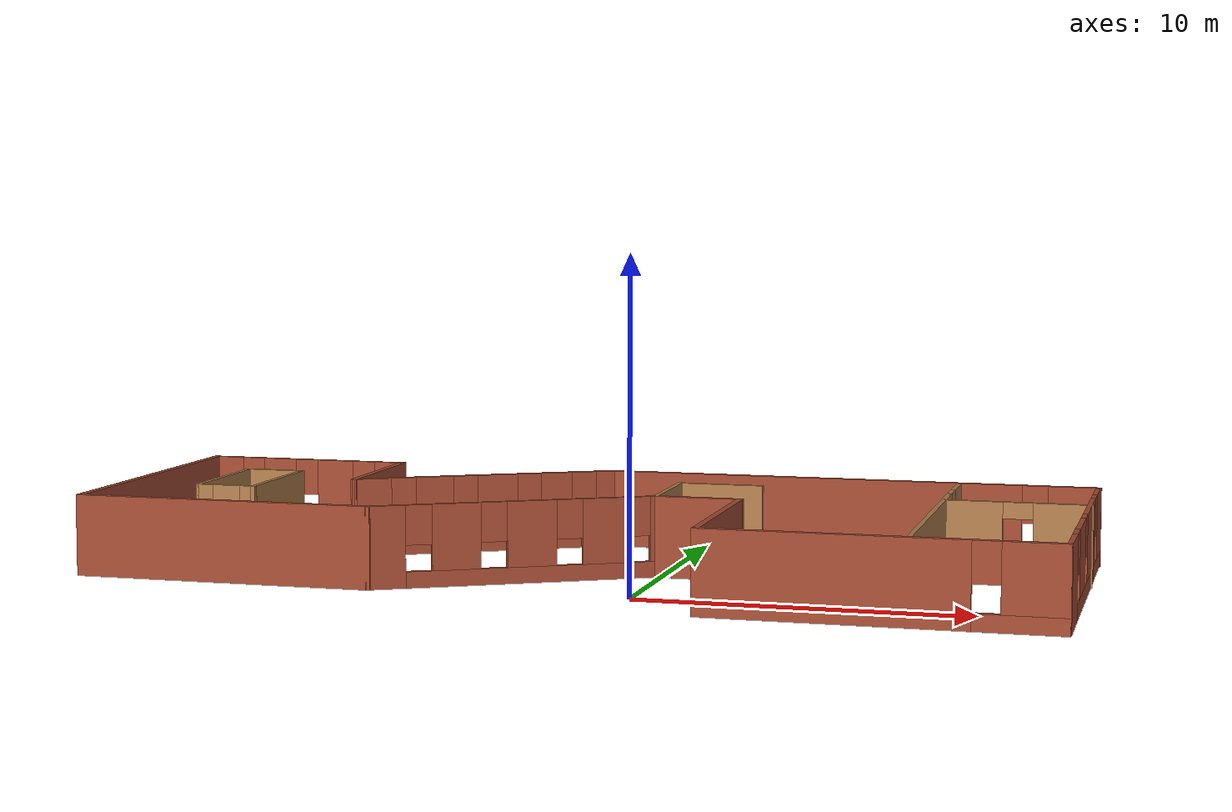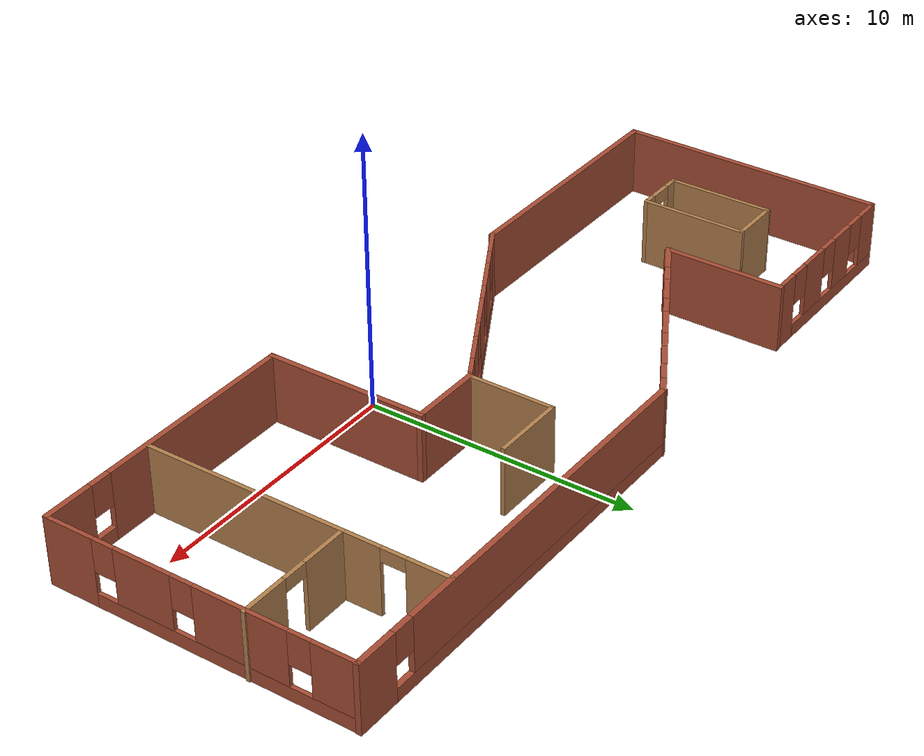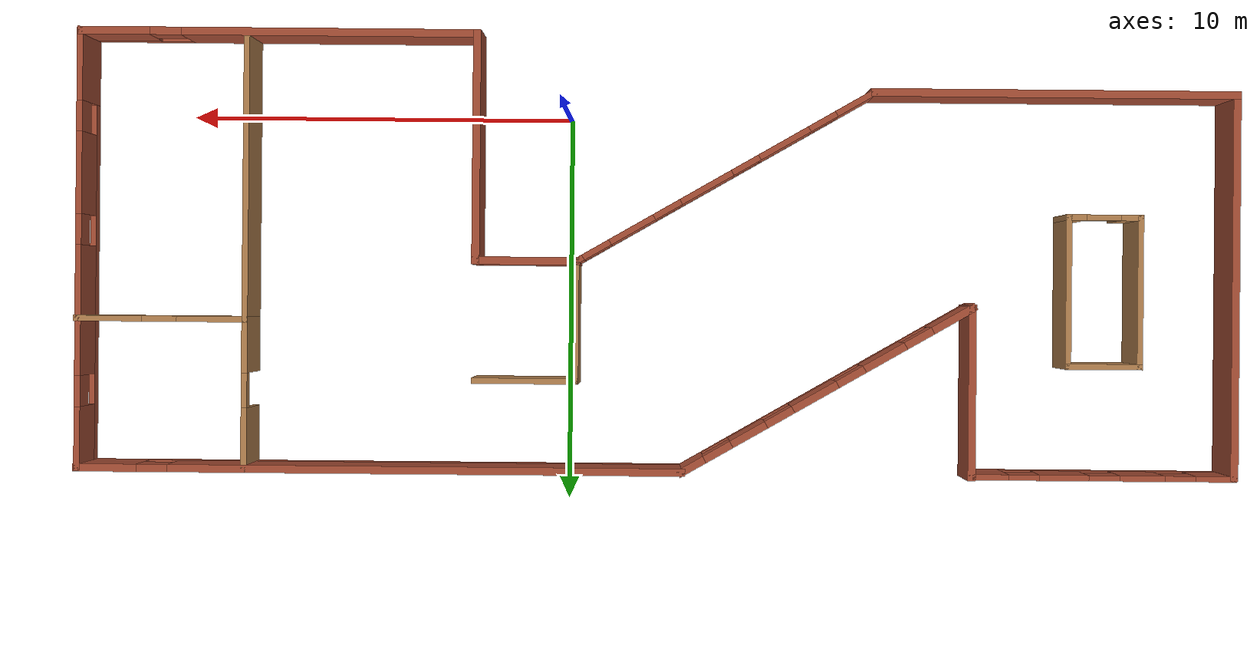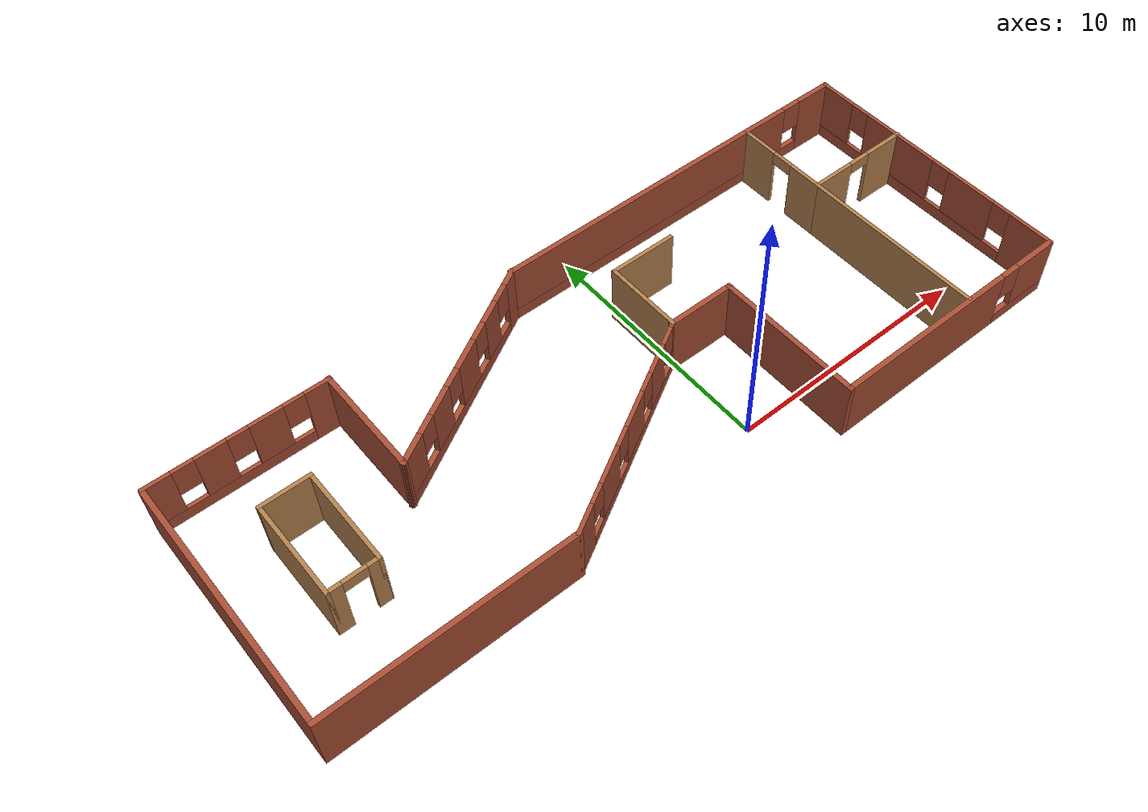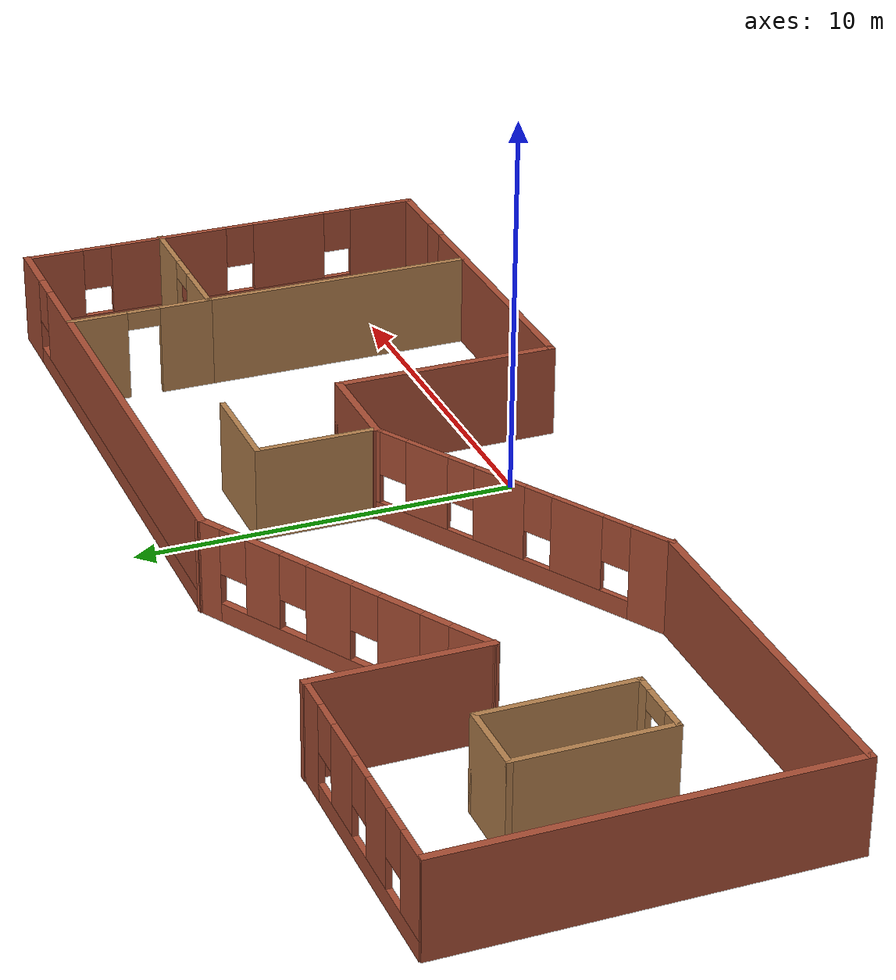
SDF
<?xml version='1.0'?>
<sdf version='1.6'>
  <model name='less_horrible'>
    <pose frame=''>-2.27039 3.5655 0 0 -0 0</pose>
    <link name='Wall_11'>
      <collision name='Wall_11_Collision'>
        <geometry>
          <box>
            <size>9.54971 0.2 2.5</size>
          </box>
        </geometry>
        <pose frame=''>0 0 1.25 0 -0 0</pose>
      </collision>
      <visual name='Wall_11_Visual'>
        <pose frame=''>0 0 1.25 0 -0 0</pose>
        <geometry>
          <box>
            <size>9.54971 0.2 2.5</size>
          </box>
        </geometry>
        <material>
          <script>
            <uri>file://media/materials/scripts/gazebo.material</uri>
            <name>Gazebo/Bricks</name>
          </script>
          <ambient>1 1 1 1</ambient>
        </material>
        <meta>
          <layer>0</layer>
        </meta>
      </visual>
      <pose frame=''>-10.2616 -4.2375 0 0 -0 0</pose>
    </link>
    <link name='Wall_12'>
      <pose frame=''>-1.75461 -2.025 0 0 -0 0.523617</pose>
      <visual name='Wall_12_Visual_0'>
        <pose frame=''>-3.89721 0 1.25 0 -0 0</pose>
        <geometry>
          <box>
            <size>1.20558 0.15 2.5</size>
          </box>
        </geometry>
        <material>
          <script>
            <uri>file://media/materials/scripts/gazebo.material</uri>
            <name>Gazebo/Bricks</name>
          </script>
          <ambient>1 1 1 1</ambient>
        </material>
        <meta>
          <layer>0</layer>
        </meta>
      </visual>
      <collision name='Wall_12_Collision_0'>
        <geometry>
          <box>
            <size>1.20558 0.15 2.5</size>
          </box>
        </geometry>
        <pose frame=''>-3.89721 0 1.25 0 -0 0</pose>
      </collision>
      <visual name='Wall_12_Visual_1'>
        <pose frame=''>0.602789 0 0.25 0 -0 0</pose>
        <geometry>
          <box>
            <size>7.79442 0.15 0.5</size>
          </box>
        </geometry>
        <material>
          <script>
            <uri>file://media/materials/scripts/gazebo.material</uri>
            <name>Gazebo/Bricks</name>
          </script>
          <ambient>1 1 1 1</ambient>
        </material>
        <meta>
          <layer>0</layer>
        </meta>
      </visual>
      <collision name='Wall_12_Collision_1'>
        <geometry>
          <box>
            <size>7.79442 0.15 0.5</size>
          </box>
        </geometry>
        <pose frame=''>0.602789 0 0.25 0 -0 0</pose>
      </collision>
      <visual name='Wall_12_Visual_2'>
        <pose frame=''>-1.75307 0 1.5 0 -0 0</pose>
        <geometry>
          <box>
            <size>1.4827 0.15 2</size>
          </box>
        </geometry>
        <material>
          <script>
            <uri>file://media/materials/scripts/gazebo.material</uri>
            <name>Gazebo/Bricks</name>
          </script>
          <ambient>1 1 1 1</ambient>
        </material>
        <meta>
          <layer>0</layer>
        </meta>
      </visual>
      <collision name='Wall_12_Collision_2'>
        <geometry>
          <box>
            <size>1.4827 0.15 2</size>
          </box>
        </geometry>
        <pose frame=''>-1.75307 0 1.5 0 -0 0</pose>
      </collision>
      <visual name='Wall_12_Visual_3'>
        <pose frame=''>0.551361 0 1.5 0 -0 0</pose>
        <geometry>
          <box>
            <size>1.52616 0.15 2</size>
          </box>
        </geometry>
        <material>
          <script>
            <uri>file://media/materials/scripts/gazebo.material</uri>
            <name>Gazebo/Bricks</name>
          </script>
          <ambient>1 1 1 1</ambient>
        </material>
        <meta>
          <layer>0</layer>
        </meta>
      </visual>
      <collision name='Wall_12_Collision_3'>
        <geometry>
          <box>
            <size>1.52616 0.15 2</size>
          </box>
        </geometry>
        <pose frame=''>0.551361 0 1.5 0 -0 0</pose>
      </collision>
      <visual name='Wall_12_Visual_4'>
        <pose frame=''>2.76852 0 1.5 0 -0 0</pose>
        <geometry>
          <box>
            <size>1.30815 0.15 2</size>
          </box>
        </geometry>
        <material>
          <script>
            <uri>file://media/materials/scripts/gazebo.material</uri>
            <name>Gazebo/Bricks</name>
          </script>
          <ambient>1 1 1 1</ambient>
        </material>
        <meta>
          <layer>0</layer>
        </meta>
      </visual>
      <collision name='Wall_12_Collision_4'>
        <geometry>
          <box>
            <size>1.30815 0.15 2</size>
          </box>
        </geometry>
        <pose frame=''>2.76852 0 1.5 0 -0 0</pose>
      </collision>
      <visual name='Wall_12_Visual_5'>
        <pose frame=''>4.3613 0 1.5 0 -0 0</pose>
        <geometry>
          <box>
            <size>0.277405 0.15 2</size>
          </box>
        </geometry>
        <material>
          <script>
            <uri>file://media/materials/scripts/gazebo.material</uri>
            <name>Gazebo/Bricks</name>
          </script>
          <ambient>1 1 1 1</ambient>
        </material>
        <meta>
          <layer>0</layer>
        </meta>
      </visual>
      <collision name='Wall_12_Collision_5'>
        <geometry>
          <box>
            <size>0.277405 0.15 2</size>
          </box>
        </geometry>
        <pose frame=''>4.3613 0 1.5 0 -0 0</pose>
      </collision>
      <visual name='Wall_12_Visual_6'>
        <pose frame=''>-2.89442 0 1.9 0 -0 0</pose>
        <geometry>
          <box>
            <size>0.8 0.15 1.2</size>
          </box>
        </geometry>
        <material>
          <script>
            <uri>file://media/materials/scripts/gazebo.material</uri>
            <name>Gazebo/Bricks</name>
          </script>
          <ambient>1 1 1 1</ambient>
        </material>
        <meta>
          <layer>0</layer>
        </meta>
      </visual>
      <collision name='Wall_12_Collision_6'>
        <geometry>
          <box>
            <size>0.8 0.15 1.2</size>
          </box>
        </geometry>
        <pose frame=''>-2.89442 0 1.9 0 -0 0</pose>
      </collision>
      <visual name='Wall_12_Visual_7'>
        <pose frame=''>-0.611721 0 1.9 0 -0 0</pose>
        <geometry>
          <box>
            <size>0.8 0.15 1.2</size>
          </box>
        </geometry>
        <material>
          <script>
            <uri>file://media/materials/scripts/gazebo.material</uri>
            <name>Gazebo/Bricks</name>
          </script>
          <ambient>1 1 1 1</ambient>
        </material>
        <meta>
          <layer>0</layer>
        </meta>
      </visual>
      <collision name='Wall_12_Collision_7'>
        <geometry>
          <box>
            <size>0.8 0.15 1.2</size>
          </box>
        </geometry>
        <pose frame=''>-0.611721 0 1.9 0 -0 0</pose>
      </collision>
      <visual name='Wall_12_Visual_8'>
        <pose frame=''>1.71444 0 1.9 0 -0 0</pose>
        <geometry>
          <box>
            <size>0.8 0.15 1.2</size>
          </box>
        </geometry>
        <material>
          <script>
            <uri>file://media/materials/scripts/gazebo.material</uri>
            <name>Gazebo/Bricks</name>
          </script>
          <ambient>1 1 1 1</ambient>
        </material>
        <meta>
          <layer>0</layer>
        </meta>
      </visual>
      <collision name='Wall_12_Collision_8'>
        <geometry>
          <box>
            <size>0.8 0.15 1.2</size>
          </box>
        </geometry>
        <pose frame=''>1.71444 0 1.9 0 -0 0</pose>
      </collision>
      <visual name='Wall_12_Visual_9'>
        <pose frame=''>3.8226 0 1.9 0 -0 0</pose>
        <geometry>
          <box>
            <size>0.8 0.15 1.2</size>
          </box>
        </geometry>
        <material>
          <script>
            <uri>file://media/materials/scripts/gazebo.material</uri>
            <name>Gazebo/Bricks</name>
          </script>
          <ambient>1 1 1 1</ambient>
        </material>
        <meta>
          <layer>0</layer>
        </meta>
      </visual>
      <collision name='Wall_12_Collision_9'>
        <geometry>
          <box>
            <size>0.8 0.15 1.2</size>
          </box>
        </geometry>
        <pose frame=''>3.8226 0 1.9 0 -0 0</pose>
      </collision>
    </link>
    <link name='Wall_13'>
      <collision name='Wall_13_Collision'>
        <geometry>
          <box>
            <size>2.80004 0.2 2.5</size>
          </box>
        </geometry>
        <pose frame=''>0 0 1.25 0 -0 0</pose>
      </collision>
      <visual name='Wall_13_Visual'>
        <pose frame=''>0 0 1.25 0 -0 0</pose>
        <geometry>
          <box>
            <size>2.80004 0.2 2.5</size>
          </box>
        </geometry>
        <material>
          <script>
            <uri>file://media/materials/scripts/gazebo.material</uri>
            <name>Gazebo/Bricks</name>
          </script>
          <ambient>1 1 1 1</ambient>
        </material>
        <meta>
          <layer>0</layer>
        </meta>
      </visual>
      <pose frame=''>3.37739 0.1875 0 0 -0 0</pose>
    </link>
    <link name='Wall_14'>
      <collision name='Wall_14_Collision'>
        <geometry>
          <box>
            <size>6.05 0.2 2.5</size>
          </box>
        </geometry>
        <pose frame=''>0 0 1.25 0 -0 0</pose>
      </collision>
      <visual name='Wall_14_Visual'>
        <pose frame=''>0 0 1.25 0 -0 0</pose>
        <geometry>
          <box>
            <size>6.05 0.2 2.5</size>
          </box>
        </geometry>
        <material>
          <script>
            <uri>file://media/materials/scripts/gazebo.material</uri>
            <name>Gazebo/Bricks</name>
          </script>
          <ambient>1 1 1 1</ambient>
        </material>
        <meta>
          <layer>0</layer>
        </meta>
      </visual>
      <pose frame=''>4.67739 -2.7375 0 0 0 -1.5708</pose>
    </link>
    <link name='Wall_18'>
      <pose frame=''>9.77389 -5.6625 0 0 -0 0</pose>
      <visual name='Wall_18_Visual_0'>
        <pose frame=''>-1.32868 0 1.25 0 -0 0</pose>
        <geometry>
          <box>
            <size>7.73564 0.2 2.5</size>
          </box>
        </geometry>
        <material>
          <script>
            <uri>file://media/materials/scripts/gazebo.material</uri>
            <name>Gazebo/Bricks</name>
          </script>
          <ambient>1 1 1 1</ambient>
        </material>
        <meta>
          <layer>0</layer>
        </meta>
      </visual>
      <collision name='Wall_18_Collision_0'>
        <geometry>
          <box>
            <size>7.73564 0.2 2.5</size>
          </box>
        </geometry>
        <pose frame=''>-1.32868 0 1.25 0 -0 0</pose>
      </collision>
      <visual name='Wall_18_Visual_1'>
        <pose frame=''>3.86782 0 0.25 0 -0 0</pose>
        <geometry>
          <box>
            <size>2.65736 0.2 0.5</size>
          </box>
        </geometry>
        <material>
          <script>
            <uri>file://media/materials/scripts/gazebo.material</uri>
            <name>Gazebo/Bricks</name>
          </script>
          <ambient>1 1 1 1</ambient>
        </material>
        <meta>
          <layer>0</layer>
        </meta>
      </visual>
      <collision name='Wall_18_Collision_1'>
        <geometry>
          <box>
            <size>2.65736 0.2 0.5</size>
          </box>
        </geometry>
        <pose frame=''>3.86782 0 0.25 0 -0 0</pose>
      </collision>
      <visual name='Wall_18_Visual_2'>
        <pose frame=''>4.26782 0 1.5 0 -0 0</pose>
        <geometry>
          <box>
            <size>1.85736 0.2 2</size>
          </box>
        </geometry>
        <material>
          <script>
            <uri>file://media/materials/scripts/gazebo.material</uri>
            <name>Gazebo/Bricks</name>
          </script>
          <ambient>1 1 1 1</ambient>
        </material>
        <meta>
          <layer>0</layer>
        </meta>
      </visual>
      <collision name='Wall_18_Collision_2'>
        <geometry>
          <box>
            <size>1.85736 0.2 2</size>
          </box>
        </geometry>
        <pose frame=''>4.26782 0 1.5 0 -0 0</pose>
      </collision>
      <visual name='Wall_18_Visual_3'>
        <pose frame=''>2.93914 0 1.9 0 -0 0</pose>
        <geometry>
          <box>
            <size>0.8 0.2 1.2</size>
          </box>
        </geometry>
        <material>
          <script>
            <uri>file://media/materials/scripts/gazebo.material</uri>
            <name>Gazebo/Bricks</name>
          </script>
          <ambient>1 1 1 1</ambient>
        </material>
        <meta>
          <layer>0</layer>
        </meta>
      </visual>
      <collision name='Wall_18_Collision_3'>
        <geometry>
          <box>
            <size>0.8 0.2 1.2</size>
          </box>
        </geometry>
        <pose frame=''>2.93914 0 1.9 0 -0 0</pose>
      </collision>
    </link>
    <link name='Wall_21'>
      <pose frame=''>10.6116 3.68688 0 0 0 -1.5708</pose>
      <visual name='Wall_21_Visual_0'>
        <pose frame=''>-1.17669 0 1.25 0 -0 0</pose>
        <geometry>
          <box>
            <size>1.64661 0.15 2.5</size>
          </box>
        </geometry>
        <material>
          <script>
            <uri>file://media/materials/scripts/gazebo.material</uri>
            <name>Gazebo/Wood</name>
          </script>
          <ambient>1 1 1 1</ambient>
        </material>
        <meta>
          <layer>0</layer>
        </meta>
      </visual>
      <collision name='Wall_21_Collision_0'>
        <geometry>
          <box>
            <size>1.64661 0.15 2.5</size>
          </box>
        </geometry>
        <pose frame=''>-1.17669 0 1.25 0 -0 0</pose>
      </collision>
      <visual name='Wall_21_Visual_1'>
        <pose frame=''>1.27331 0 1.25 0 -0 0</pose>
        <geometry>
          <box>
            <size>1.45338 0.15 2.5</size>
          </box>
        </geometry>
        <material>
          <script>
            <uri>file://media/materials/scripts/gazebo.material</uri>
            <name>Gazebo/Wood</name>
          </script>
          <ambient>1 1 1 1</ambient>
        </material>
        <meta>
          <layer>0</layer>
        </meta>
      </visual>
      <collision name='Wall_21_Collision_1'>
        <geometry>
          <box>
            <size>1.45338 0.15 2.5</size>
          </box>
        </geometry>
        <pose frame=''>1.27331 0 1.25 0 -0 0</pose>
      </collision>
      <visual name='Wall_21_Visual_2'>
        <pose frame=''>0.096615 0 2.25 0 -0 0</pose>
        <geometry>
          <box>
            <size>0.9 0.15 0.5</size>
          </box>
        </geometry>
        <material>
          <script>
            <uri>file://media/materials/scripts/gazebo.material</uri>
            <name>Gazebo/Wood</name>
          </script>
          <ambient>1 1 1 1</ambient>
        </material>
        <meta>
          <layer>0</layer>
        </meta>
      </visual>
      <collision name='Wall_21_Collision_2'>
        <geometry>
          <box>
            <size>0.9 0.15 0.5</size>
          </box>
        </geometry>
        <pose frame=''>0.096615 0 2.25 0 -0 0</pose>
      </collision>
    </link>
    <link name='Wall_22'>
      <pose frame=''>12.7866 1.76188 0 0 -0 0</pose>
      <visual name='Wall_22_Visual_0'>
        <pose frame=''>-1.33359 0 1.25 0 -0 0</pose>
        <geometry>
          <box>
            <size>1.83282 0.15 2.5</size>
          </box>
        </geometry>
        <material>
          <script>
            <uri>file://media/materials/scripts/gazebo.material</uri>
            <name>Gazebo/Wood</name>
          </script>
          <ambient>1 1 1 1</ambient>
        </material>
        <meta>
          <layer>0</layer>
        </meta>
      </visual>
      <collision name='Wall_22_Collision_0'>
        <geometry>
          <box>
            <size>1.83282 0.15 2.5</size>
          </box>
        </geometry>
        <pose frame=''>-1.33359 0 1.25 0 -0 0</pose>
      </collision>
      <visual name='Wall_22_Visual_1'>
        <pose frame=''>1.36641 0 1.25 0 -0 0</pose>
        <geometry>
          <box>
            <size>1.76718 0.15 2.5</size>
          </box>
        </geometry>
        <material>
          <script>
            <uri>file://media/materials/scripts/gazebo.material</uri>
            <name>Gazebo/Wood</name>
          </script>
          <ambient>1 1 1 1</ambient>
        </material>
        <meta>
          <layer>0</layer>
        </meta>
      </visual>
      <collision name='Wall_22_Collision_1'>
        <geometry>
          <box>
            <size>1.76718 0.15 2.5</size>
          </box>
        </geometry>
        <pose frame=''>1.36641 0 1.25 0 -0 0</pose>
      </collision>
      <visual name='Wall_22_Visual_2'>
        <pose frame=''>0.032816 0 2.25 0 -0 0</pose>
        <geometry>
          <box>
            <size>0.9 0.15 0.5</size>
          </box>
        </geometry>
        <material>
          <script>
            <uri>file://media/materials/scripts/gazebo.material</uri>
            <name>Gazebo/Wood</name>
          </script>
          <ambient>1 1 1 1</ambient>
        </material>
        <meta>
          <layer>0</layer>
        </meta>
      </visual>
      <collision name='Wall_22_Collision_2'>
        <geometry>
          <box>
            <size>0.9 0.15 0.5</size>
          </box>
        </geometry>
        <pose frame=''>0.032816 0 2.25 0 -0 0</pose>
      </collision>
    </link>
    <link name='Wall_24'>
      <collision name='Wall_24_Collision'>
        <geometry>
          <box>
            <size>7.5 0.15 2.5</size>
          </box>
        </geometry>
        <pose frame=''>0 0 1.25 0 -0 0</pose>
      </collision>
      <visual name='Wall_24_Visual'>
        <pose frame=''>0 0 1.25 0 -0 0</pose>
        <geometry>
          <box>
            <size>7.5 0.15 2.5</size>
          </box>
        </geometry>
        <material>
          <script>
            <uri>file://media/materials/scripts/gazebo.material</uri>
            <name>Gazebo/Wood</name>
          </script>
          <ambient>1 1 1 1</ambient>
        </material>
        <meta>
          <layer>0</layer>
        </meta>
      </visual>
      <pose frame=''>10.6116 -1.91312 0 0 0 -1.5708</pose>
    </link>
    <link name='Wall_3'>
      <collision name='Wall_3_Collision'>
        <geometry>
          <box>
            <size>10.0498 0.2 2.5</size>
          </box>
        </geometry>
        <pose frame=''>0 0 1.25 0 -0 0</pose>
      </collision>
      <visual name='Wall_3_Visual'>
        <pose frame=''>0 0 1.25 0 -0 0</pose>
        <geometry>
          <box>
            <size>10.0498 0.2 2.5</size>
          </box>
        </geometry>
        <material>
          <script>
            <uri>file://media/materials/scripts/gazebo.material</uri>
            <name>Gazebo/Bricks</name>
          </script>
          <ambient>1 1 1 1</ambient>
        </material>
        <meta>
          <layer>0</layer>
        </meta>
      </visual>
      <pose frame=''>-14.9366 0.6875 0 0 0 -1.5708</pose>
    </link>
    <link name='Wall_5'>
      <pose frame=''>14.9134 -0.0265 0 0 -0 1.5708</pose>
      <visual name='Wall_5_Visual_0'>
        <pose frame=''>-4.77314 0 1.25 0 -0 0</pose>
        <geometry>
          <box>
            <size>1.88171 0.15 2.5</size>
          </box>
        </geometry>
        <material>
          <script>
            <uri>file://media/materials/scripts/gazebo.material</uri>
            <name>Gazebo/Bricks</name>
          </script>
          <ambient>1 1 1 1</ambient>
        </material>
        <meta>
          <layer>0</layer>
        </meta>
      </visual>
      <collision name='Wall_5_Collision_0'>
        <geometry>
          <box>
            <size>1.88171 0.15 2.5</size>
          </box>
        </geometry>
        <pose frame=''>-4.77314 0 1.25 0 -0 0</pose>
      </collision>
      <visual name='Wall_5_Visual_1'>
        <pose frame=''>0.940857 0 0.25 0 -0 0</pose>
        <geometry>
          <box>
            <size>9.54629 0.15 0.5</size>
          </box>
        </geometry>
        <material>
          <script>
            <uri>file://media/materials/scripts/gazebo.material</uri>
            <name>Gazebo/Bricks</name>
          </script>
          <ambient>1 1 1 1</ambient>
        </material>
        <meta>
          <layer>0</layer>
        </meta>
      </visual>
      <collision name='Wall_5_Collision_1'>
        <geometry>
          <box>
            <size>9.54629 0.15 0.5</size>
          </box>
        </geometry>
        <pose frame=''>0.940857 0 0.25 0 -0 0</pose>
      </collision>
      <visual name='Wall_5_Visual_2'>
        <pose frame=''>-1.96928 0 1.5 0 -0 0</pose>
        <geometry>
          <box>
            <size>2.12602 0.15 2</size>
          </box>
        </geometry>
        <material>
          <script>
            <uri>file://media/materials/scripts/gazebo.material</uri>
            <name>Gazebo/Bricks</name>
          </script>
          <ambient>1 1 1 1</ambient>
        </material>
        <meta>
          <layer>0</layer>
        </meta>
      </visual>
      <collision name='Wall_5_Collision_2'>
        <geometry>
          <box>
            <size>2.12602 0.15 2</size>
          </box>
        </geometry>
        <pose frame=''>-1.96928 0 1.5 0 -0 0</pose>
      </collision>
      <visual name='Wall_5_Visual_3'>
        <pose frame=''>1.58185 0 1.5 0 -0 0</pose>
        <geometry>
          <box>
            <size>3.37623 0.15 2</size>
          </box>
        </geometry>
        <material>
          <script>
            <uri>file://media/materials/scripts/gazebo.material</uri>
            <name>Gazebo/Bricks</name>
          </script>
          <ambient>1 1 1 1</ambient>
        </material>
        <meta>
          <layer>0</layer>
        </meta>
      </visual>
      <collision name='Wall_5_Collision_3'>
        <geometry>
          <box>
            <size>3.37623 0.15 2</size>
          </box>
        </geometry>
        <pose frame=''>1.58185 0 1.5 0 -0 0</pose>
      </collision>
      <visual name='Wall_5_Visual_4'>
        <pose frame=''>4.89198 0 1.5 0 -0 0</pose>
        <geometry>
          <box>
            <size>1.64403 0.15 2</size>
          </box>
        </geometry>
        <material>
          <script>
            <uri>file://media/materials/scripts/gazebo.material</uri>
            <name>Gazebo/Bricks</name>
          </script>
          <ambient>1 1 1 1</ambient>
        </material>
        <meta>
          <layer>0</layer>
        </meta>
      </visual>
      <collision name='Wall_5_Collision_4'>
        <geometry>
          <box>
            <size>1.64403 0.15 2</size>
          </box>
        </geometry>
        <pose frame=''>4.89198 0 1.5 0 -0 0</pose>
      </collision>
      <visual name='Wall_5_Visual_5'>
        <pose frame=''>-3.43229 0 1.9 0 -0 0</pose>
        <geometry>
          <box>
            <size>0.8 0.15 1.2</size>
          </box>
        </geometry>
        <material>
          <script>
            <uri>file://media/materials/scripts/gazebo.material</uri>
            <name>Gazebo/Bricks</name>
          </script>
          <ambient>1 1 1 1</ambient>
        </material>
        <meta>
          <layer>0</layer>
        </meta>
      </visual>
      <collision name='Wall_5_Collision_5'>
        <geometry>
          <box>
            <size>0.8 0.15 1.2</size>
          </box>
        </geometry>
        <pose frame=''>-3.43229 0 1.9 0 -0 0</pose>
      </collision>
      <visual name='Wall_5_Visual_6'>
        <pose frame=''>-0.506265 0 1.9 0 -0 0</pose>
        <geometry>
          <box>
            <size>0.8 0.15 1.2</size>
          </box>
        </geometry>
        <material>
          <script>
            <uri>file://media/materials/scripts/gazebo.material</uri>
            <name>Gazebo/Bricks</name>
          </script>
          <ambient>1 1 1 1</ambient>
        </material>
        <meta>
          <layer>0</layer>
        </meta>
      </visual>
      <collision name='Wall_5_Collision_6'>
        <geometry>
          <box>
            <size>0.8 0.15 1.2</size>
          </box>
        </geometry>
        <pose frame=''>-0.506265 0 1.9 0 -0 0</pose>
      </collision>
      <visual name='Wall_5_Visual_7'>
        <pose frame=''>3.66997 0 1.9 0 -0 0</pose>
        <geometry>
          <box>
            <size>0.8 0.15 1.2</size>
          </box>
        </geometry>
        <material>
          <script>
            <uri>file://media/materials/scripts/gazebo.material</uri>
            <name>Gazebo/Bricks</name>
          </script>
          <ambient>1 1 1 1</ambient>
        </material>
        <meta>
          <layer>0</layer>
        </meta>
      </visual>
      <collision name='Wall_5_Collision_7'>
        <geometry>
          <box>
            <size>0.8 0.15 1.2</size>
          </box>
        </geometry>
        <pose frame=''>3.66997 0 1.9 0 -0 0</pose>
      </collision>
    </link>
    <link name='Wall_6'>
      <pose frame=''>7.11339 5.6125 0 0 -0 3.14159</pose>
      <visual name='Wall_6_Visual_0'>
        <pose frame=''>-7.08284 0 1.25 0 -0 0</pose>
        <geometry>
          <box>
            <size>1.63432 0.2 2.5</size>
          </box>
        </geometry>
        <material>
          <script>
            <uri>file://media/materials/scripts/gazebo.material</uri>
            <name>Gazebo/Bricks</name>
          </script>
          <ambient>1 1 1 1</ambient>
        </material>
        <meta>
          <layer>0</layer>
        </meta>
      </visual>
      <collision name='Wall_6_Collision_0'>
        <geometry>
          <box>
            <size>1.63432 0.2 2.5</size>
          </box>
        </geometry>
        <pose frame=''>-7.08284 0 1.25 0 -0 0</pose>
      </collision>
      <visual name='Wall_6_Visual_1'>
        <pose frame=''>0.817161 0 0.25 0 -0 0</pose>
        <geometry>
          <box>
            <size>14.1657 0.2 0.5</size>
          </box>
        </geometry>
        <material>
          <script>
            <uri>file://media/materials/scripts/gazebo.material</uri>
            <name>Gazebo/Bricks</name>
          </script>
          <ambient>1 1 1 1</ambient>
        </material>
        <meta>
          <layer>0</layer>
        </meta>
      </visual>
      <collision name='Wall_6_Collision_1'>
        <geometry>
          <box>
            <size>14.1657 0.2 0.5</size>
          </box>
        </geometry>
        <pose frame=''>0.817161 0 0.25 0 -0 0</pose>
      </collision>
      <visual name='Wall_6_Visual_2'>
        <pose frame=''>1.21716 0 1.5 0 -0 0</pose>
        <geometry>
          <box>
            <size>13.3657 0.2 2</size>
          </box>
        </geometry>
        <material>
          <script>
            <uri>file://media/materials/scripts/gazebo.material</uri>
            <name>Gazebo/Bricks</name>
          </script>
          <ambient>1 1 1 1</ambient>
        </material>
        <meta>
          <layer>0</layer>
        </meta>
      </visual>
      <collision name='Wall_6_Collision_2'>
        <geometry>
          <box>
            <size>13.3657 0.2 2</size>
          </box>
        </geometry>
        <pose frame=''>1.21716 0 1.5 0 -0 0</pose>
      </collision>
      <visual name='Wall_6_Visual_3'>
        <pose frame=''>-5.86568 0 1.9 0 -0 0</pose>
        <geometry>
          <box>
            <size>0.8 0.2 1.2</size>
          </box>
        </geometry>
        <material>
          <script>
            <uri>file://media/materials/scripts/gazebo.material</uri>
            <name>Gazebo/Bricks</name>
          </script>
          <ambient>1 1 1 1</ambient>
        </material>
        <meta>
          <layer>0</layer>
        </meta>
      </visual>
      <collision name='Wall_6_Collision_3'>
        <geometry>
          <box>
            <size>0.8 0.2 1.2</size>
          </box>
        </geometry>
        <pose frame=''>-5.86568 0 1.9 0 -0 0</pose>
      </collision>
    </link>
    <link name='Wall_69'>
      <collision name='Wall_69_Collision'>
        <geometry>
          <box>
            <size>3.25 0.15 2.5</size>
          </box>
        </geometry>
        <pose frame=''>0 0 1.25 0 -0 0</pose>
      </collision>
      <visual name='Wall_69_Visual'>
        <pose frame=''>0 0 1.25 0 -0 0</pose>
        <geometry>
          <box>
            <size>3.25 0.15 2.5</size>
          </box>
        </geometry>
        <material>
          <script>
            <uri>file://media/materials/scripts/gazebo.material</uri>
            <name>Gazebo/Wood</name>
          </script>
          <ambient>1 1 1 1</ambient>
        </material>
        <meta>
          <layer>0</layer>
        </meta>
      </visual>
      <pose frame=''>2.07741 1.73758 0 0 -0 1.57079</pose>
    </link>
    <link name='Wall_7'>
      <pose frame=''>-4.42411 3.4625 0 0 0 -2.61957</pose>
      <visual name='Wall_7_Visual_0'>
        <pose frame=''>-4.02424 0 1.25 0 -0 0</pose>
        <geometry>
          <box>
            <size>0.775071 0.2 2.5</size>
          </box>
        </geometry>
        <material>
          <script>
            <uri>file://media/materials/scripts/gazebo.material</uri>
            <name>Gazebo/Bricks</name>
          </script>
          <ambient>1 1 1 1</ambient>
        </material>
        <meta>
          <layer>0</layer>
        </meta>
      </visual>
      <collision name='Wall_7_Collision_0'>
        <geometry>
          <box>
            <size>0.775071 0.2 2.5</size>
          </box>
        </geometry>
        <pose frame=''>-4.02424 0 1.25 0 -0 0</pose>
      </collision>
      <visual name='Wall_7_Visual_1'>
        <pose frame=''>0.387535 0 0.25 0 -0 0</pose>
        <geometry>
          <box>
            <size>8.04848 0.2 0.5</size>
          </box>
        </geometry>
        <material>
          <script>
            <uri>file://media/materials/scripts/gazebo.material</uri>
            <name>Gazebo/Bricks</name>
          </script>
          <ambient>1 1 1 1</ambient>
        </material>
        <meta>
          <layer>0</layer>
        </meta>
      </visual>
      <collision name='Wall_7_Collision_1'>
        <geometry>
          <box>
            <size>8.04848 0.2 0.5</size>
          </box>
        </geometry>
        <pose frame=''>0.387535 0 0.25 0 -0 0</pose>
      </collision>
      <visual name='Wall_7_Visual_2'>
        <pose frame=''>-2.32092 0 1.5 0 -0 0</pose>
        <geometry>
          <box>
            <size>1.03156 0.2 2</size>
          </box>
        </geometry>
        <material>
          <script>
            <uri>file://media/materials/scripts/gazebo.material</uri>
            <name>Gazebo/Bricks</name>
          </script>
          <ambient>1 1 1 1</ambient>
        </material>
        <meta>
          <layer>0</layer>
        </meta>
      </visual>
      <collision name='Wall_7_Collision_2'>
        <geometry>
          <box>
            <size>1.03156 0.2 2</size>
          </box>
        </geometry>
        <pose frame=''>-2.32092 0 1.5 0 -0 0</pose>
      </collision>
      <visual name='Wall_7_Visual_3'>
        <pose frame=''>-0.346126 0 1.5 0 -0 0</pose>
        <geometry>
          <box>
            <size>1.31804 0.2 2</size>
          </box>
        </geometry>
        <material>
          <script>
            <uri>file://media/materials/scripts/gazebo.material</uri>
            <name>Gazebo/Bricks</name>
          </script>
          <ambient>1 1 1 1</ambient>
        </material>
        <meta>
          <layer>0</layer>
        </meta>
      </visual>
      <collision name='Wall_7_Collision_3'>
        <geometry>
          <box>
            <size>1.31804 0.2 2</size>
          </box>
        </geometry>
        <pose frame=''>-0.346126 0 1.5 0 -0 0</pose>
      </collision>
      <visual name='Wall_7_Visual_4'>
        <pose frame=''>1.72376 0 1.5 0 -0 0</pose>
        <geometry>
          <box>
            <size>1.22172 0.2 2</size>
          </box>
        </geometry>
        <material>
          <script>
            <uri>file://media/materials/scripts/gazebo.material</uri>
            <name>Gazebo/Bricks</name>
          </script>
          <ambient>1 1 1 1</ambient>
        </material>
        <meta>
          <layer>0</layer>
        </meta>
      </visual>
      <collision name='Wall_7_Collision_4'>
        <geometry>
          <box>
            <size>1.22172 0.2 2</size>
          </box>
        </geometry>
        <pose frame=''>1.72376 0 1.5 0 -0 0</pose>
      </collision>
      <visual name='Wall_7_Visual_5'>
        <pose frame=''>3.7732 0 1.5 0 -0 0</pose>
        <geometry>
          <box>
            <size>1.27716 0.2 2</size>
          </box>
        </geometry>
        <material>
          <script>
            <uri>file://media/materials/scripts/gazebo.material</uri>
            <name>Gazebo/Bricks</name>
          </script>
          <ambient>1 1 1 1</ambient>
        </material>
        <meta>
          <layer>0</layer>
        </meta>
      </visual>
      <collision name='Wall_7_Collision_5'>
        <geometry>
          <box>
            <size>1.27716 0.2 2</size>
          </box>
        </geometry>
        <pose frame=''>3.7732 0 1.5 0 -0 0</pose>
      </collision>
      <visual name='Wall_7_Visual_6'>
        <pose frame=''>-3.2367 0 1.9 0 -0 0</pose>
        <geometry>
          <box>
            <size>0.8 0.2 1.2</size>
          </box>
        </geometry>
        <material>
          <script>
            <uri>file://media/materials/scripts/gazebo.material</uri>
            <name>Gazebo/Bricks</name>
          </script>
          <ambient>1 1 1 1</ambient>
        </material>
        <meta>
          <layer>0</layer>
        </meta>
      </visual>
      <collision name='Wall_7_Collision_6'>
        <geometry>
          <box>
            <size>0.8 0.2 1.2</size>
          </box>
        </geometry>
        <pose frame=''>-3.2367 0 1.9 0 -0 0</pose>
      </collision>
      <visual name='Wall_7_Visual_7'>
        <pose frame=''>-1.40515 0 1.9 0 -0 0</pose>
        <geometry>
          <box>
            <size>0.8 0.2 1.2</size>
          </box>
        </geometry>
        <material>
          <script>
            <uri>file://media/materials/scripts/gazebo.material</uri>
            <name>Gazebo/Bricks</name>
          </script>
          <ambient>1 1 1 1</ambient>
        </material>
        <meta>
          <layer>0</layer>
        </meta>
      </visual>
      <collision name='Wall_7_Collision_7'>
        <geometry>
          <box>
            <size>0.8 0.2 1.2</size>
          </box>
        </geometry>
        <pose frame=''>-1.40515 0 1.9 0 -0 0</pose>
      </collision>
      <visual name='Wall_7_Visual_8'>
        <pose frame=''>0.712894 0 1.9 0 -0 0</pose>
        <geometry>
          <box>
            <size>0.8 0.2 1.2</size>
          </box>
        </geometry>
        <material>
          <script>
            <uri>file://media/materials/scripts/gazebo.material</uri>
            <name>Gazebo/Bricks</name>
          </script>
          <ambient>1 1 1 1</ambient>
        </material>
        <meta>
          <layer>0</layer>
        </meta>
      </visual>
      <collision name='Wall_7_Collision_8'>
        <geometry>
          <box>
            <size>0.8 0.2 1.2</size>
          </box>
        </geometry>
        <pose frame=''>0.712894 0 1.9 0 -0 0</pose>
      </collision>
      <visual name='Wall_7_Visual_9'>
        <pose frame=''>2.73462 0 1.9 0 -0 0</pose>
        <geometry>
          <box>
            <size>0.8 0.2 1.2</size>
          </box>
        </geometry>
        <material>
          <script>
            <uri>file://media/materials/scripts/gazebo.material</uri>
            <name>Gazebo/Bricks</name>
          </script>
          <ambient>1 1 1 1</ambient>
        </material>
        <meta>
          <layer>0</layer>
        </meta>
      </visual>
      <collision name='Wall_7_Collision_9'>
        <geometry>
          <box>
            <size>0.8 0.2 1.2</size>
          </box>
        </geometry>
        <pose frame=''>2.73462 0 1.9 0 -0 0</pose>
      </collision>
    </link>
    <link name='Wall_70'>
      <collision name='Wall_70_Collision'>
        <geometry>
          <box>
            <size>2.75 0.15 2.5</size>
          </box>
        </geometry>
        <pose frame=''>0 0 1.25 0 -0 0</pose>
      </collision>
      <visual name='Wall_70_Visual'>
        <pose frame=''>0 0 1.25 0 -0 0</pose>
        <geometry>
          <box>
            <size>2.75 0.15 2.5</size>
          </box>
        </geometry>
        <material>
          <script>
            <uri>file://media/materials/scripts/gazebo.material</uri>
            <name>Gazebo/Wood</name>
          </script>
          <ambient>1 1 1 1</ambient>
        </material>
        <meta>
          <layer>0</layer>
        </meta>
      </visual>
      <pose frame=''>3.37743 3.28767 0 0 -0 0</pose>
    </link>
    <link name='Wall_72'>
      <collision name='Wall_72_Collision'>
        <geometry>
          <box>
            <size>2 0.15 2.5</size>
          </box>
        </geometry>
        <pose frame=''>0 0 1.25 0 -0 0</pose>
      </collision>
      <visual name='Wall_72_Visual'>
        <pose frame=''>0 0 1.25 0 -0 0</pose>
        <geometry>
          <box>
            <size>2 0.15 2.5</size>
          </box>
        </geometry>
        <material>
          <script>
            <uri>file://media/materials/scripts/gazebo.material</uri>
            <name>Gazebo/Wood</name>
          </script>
          <ambient>1 1 1 1</ambient>
        </material>
        <meta>
          <layer>0</layer>
        </meta>
      </visual>
      <pose frame=''>-11.5524 2.79226 0 0 -0 0</pose>
    </link>
    <link name='Wall_73'>
      <collision name='Wall_73_Collision'>
        <geometry>
          <box>
            <size>4 0.15 2.5</size>
          </box>
        </geometry>
        <pose frame=''>0 0 1.25 0 -0 0</pose>
      </collision>
      <visual name='Wall_73_Visual'>
        <pose frame=''>0 0 1.25 0 -0 0</pose>
        <geometry>
          <box>
            <size>4 0.15 2.5</size>
          </box>
        </geometry>
        <material>
          <script>
            <uri>file://media/materials/scripts/gazebo.material</uri>
            <name>Gazebo/Wood</name>
          </script>
          <ambient>1 1 1 1</ambient>
        </material>
        <meta>
          <layer>0</layer>
        </meta>
      </visual>
      <pose frame=''>-10.6274 0.86726 0 0 0 -1.5708</pose>
    </link>
    <link name='Wall_77'>
      <collision name='Wall_77_Collision'>
        <geometry>
          <box>
            <size>4 0.15 2.5</size>
          </box>
        </geometry>
        <pose frame=''>0 0 1.25 0 -0 0</pose>
      </collision>
      <visual name='Wall_77_Visual'>
        <pose frame=''>0 0 1.25 0 -0 0</pose>
        <geometry>
          <box>
            <size>4 0.15 2.5</size>
          </box>
        </geometry>
        <material>
          <script>
            <uri>file://media/materials/scripts/gazebo.material</uri>
            <name>Gazebo/Wood</name>
          </script>
          <ambient>1 1 1 1</ambient>
        </material>
        <meta>
          <layer>0</layer>
        </meta>
      </visual>
      <pose frame=''>-12.4774 0.86726 0 0 0 -1.5708</pose>
    </link>
    <link name='Wall_78'>
      <pose frame=''>-11.5524 -1.05774 0 0 -0 0</pose>
      <visual name='Wall_78_Visual_0'>
        <pose frame=''>-0.708696 0 1.25 0 -0 0</pose>
        <geometry>
          <box>
            <size>0.582607 0.15 2.5</size>
          </box>
        </geometry>
        <material>
          <script>
            <uri>file://media/materials/scripts/gazebo.material</uri>
            <name>Gazebo/Wood</name>
          </script>
          <ambient>1 1 1 1</ambient>
        </material>
        <meta>
          <layer>0</layer>
        </meta>
      </visual>
      <collision name='Wall_78_Collision_0'>
        <geometry>
          <box>
            <size>0.582607 0.15 2.5</size>
          </box>
        </geometry>
        <pose frame=''>-0.708696 0 1.25 0 -0 0</pose>
      </collision>
      <visual name='Wall_78_Visual_1'>
        <pose frame=''>0.741304 0 1.25 0 -0 0</pose>
        <geometry>
          <box>
            <size>0.517393 0.15 2.5</size>
          </box>
        </geometry>
        <material>
          <script>
            <uri>file://media/materials/scripts/gazebo.material</uri>
            <name>Gazebo/Wood</name>
          </script>
          <ambient>1 1 1 1</ambient>
        </material>
        <meta>
          <layer>0</layer>
        </meta>
      </visual>
      <collision name='Wall_78_Collision_1'>
        <geometry>
          <box>
            <size>0.517393 0.15 2.5</size>
          </box>
        </geometry>
        <pose frame=''>0.741304 0 1.25 0 -0 0</pose>
      </collision>
      <visual name='Wall_78_Visual_2'>
        <pose frame=''>0.032607 0 2.25 0 -0 0</pose>
        <geometry>
          <box>
            <size>0.9 0.15 0.5</size>
          </box>
        </geometry>
        <material>
          <script>
            <uri>file://media/materials/scripts/gazebo.material</uri>
            <name>Gazebo/Wood</name>
          </script>
          <ambient>1 1 1 1</ambient>
        </material>
        <meta>
          <layer>0</layer>
        </meta>
      </visual>
      <collision name='Wall_78_Collision_2'>
        <geometry>
          <box>
            <size>0.9 0.15 0.5</size>
          </box>
        </geometry>
        <pose frame=''>0.032607 0 2.25 0 -0 0</pose>
      </collision>
    </link>
    <link name='Wall_8'>
      <collision name='Wall_8_Collision'>
        <geometry>
          <box>
            <size>4.55 0.2 2.5</size>
          </box>
        </geometry>
        <pose frame=''>0 0 1.25 0 -0 0</pose>
      </collision>
      <visual name='Wall_8_Visual'>
        <pose frame=''>0 0 1.25 0 -0 0</pose>
        <geometry>
          <box>
            <size>4.55 0.2 2.5</size>
          </box>
        </geometry>
        <material>
          <script>
            <uri>file://media/materials/scripts/gazebo.material</uri>
            <name>Gazebo/Bricks</name>
          </script>
          <ambient>1 1 1 1</ambient>
        </material>
        <meta>
          <layer>0</layer>
        </meta>
      </visual>
      <pose frame=''>-8.16161 3.4875 0 0 -0 1.5708</pose>
    </link>
    <link name='Wall_9'>
      <pose frame=''>-11.5456 5.6625 0 0 -0 3.14159</pose>
      <visual name='Wall_9_Visual_0'>
        <pose frame=''>-2.94245 0 1.25 0 -0 0</pose>
        <geometry>
          <box>
            <size>1.03311 0.15 2.5</size>
          </box>
        </geometry>
        <material>
          <script>
            <uri>file://media/materials/scripts/gazebo.material</uri>
            <name>Gazebo/Bricks</name>
          </script>
          <ambient>1 1 1 1</ambient>
        </material>
        <meta>
          <layer>0</layer>
        </meta>
      </visual>
      <collision name='Wall_9_Collision_0'>
        <geometry>
          <box>
            <size>1.03311 0.15 2.5</size>
          </box>
        </geometry>
        <pose frame=''>-2.94245 0 1.25 0 -0 0</pose>
      </collision>
      <visual name='Wall_9_Visual_1'>
        <pose frame=''>0.516555 0 0.25 0 -0 0</pose>
        <geometry>
          <box>
            <size>5.88489 0.15 0.5</size>
          </box>
        </geometry>
        <material>
          <script>
            <uri>file://media/materials/scripts/gazebo.material</uri>
            <name>Gazebo/Bricks</name>
          </script>
          <ambient>1 1 1 1</ambient>
        </material>
        <meta>
          <layer>0</layer>
        </meta>
      </visual>
      <collision name='Wall_9_Collision_1'>
        <geometry>
          <box>
            <size>5.88489 0.15 0.5</size>
          </box>
        </geometry>
        <pose frame=''>0.516555 0 0.25 0 -0 0</pose>
      </collision>
      <visual name='Wall_9_Visual_2'>
        <pose frame=''>-0.992604 0 1.5 0 -0 0</pose>
        <geometry>
          <box>
            <size>1.26657 0.15 2</size>
          </box>
        </geometry>
        <material>
          <script>
            <uri>file://media/materials/scripts/gazebo.material</uri>
            <name>Gazebo/Bricks</name>
          </script>
          <ambient>1 1 1 1</ambient>
        </material>
        <meta>
          <layer>0</layer>
        </meta>
      </visual>
      <collision name='Wall_9_Collision_2'>
        <geometry>
          <box>
            <size>1.26657 0.15 2</size>
          </box>
        </geometry>
        <pose frame=''>-0.992604 0 1.5 0 -0 0</pose>
      </collision>
      <visual name='Wall_9_Visual_3'>
        <pose frame=''>1.02098 0 1.5 0 -0 0</pose>
        <geometry>
          <box>
            <size>1.16059 0.15 2</size>
          </box>
        </geometry>
        <material>
          <script>
            <uri>file://media/materials/scripts/gazebo.material</uri>
            <name>Gazebo/Bricks</name>
          </script>
          <ambient>1 1 1 1</ambient>
        </material>
        <meta>
          <layer>0</layer>
        </meta>
      </visual>
      <collision name='Wall_9_Collision_3'>
        <geometry>
          <box>
            <size>1.16059 0.15 2</size>
          </box>
        </geometry>
        <pose frame=''>1.02098 0 1.5 0 -0 0</pose>
      </collision>
      <visual name='Wall_9_Visual_4'>
        <pose frame=''>2.93014 0 1.5 0 -0 0</pose>
        <geometry>
          <box>
            <size>1.05773 0.15 2</size>
          </box>
        </geometry>
        <material>
          <script>
            <uri>file://media/materials/scripts/gazebo.material</uri>
            <name>Gazebo/Bricks</name>
          </script>
          <ambient>1 1 1 1</ambient>
        </material>
        <meta>
          <layer>0</layer>
        </meta>
      </visual>
      <collision name='Wall_9_Collision_4'>
        <geometry>
          <box>
            <size>1.05773 0.15 2</size>
          </box>
        </geometry>
        <pose frame=''>2.93014 0 1.5 0 -0 0</pose>
      </collision>
      <visual name='Wall_9_Visual_5'>
        <pose frame=''>-2.02589 0 1.9 0 -0 0</pose>
        <geometry>
          <box>
            <size>0.8 0.15 1.2</size>
          </box>
        </geometry>
        <material>
          <script>
            <uri>file://media/materials/scripts/gazebo.material</uri>
            <name>Gazebo/Bricks</name>
          </script>
          <ambient>1 1 1 1</ambient>
        </material>
        <meta>
          <layer>0</layer>
        </meta>
      </visual>
      <collision name='Wall_9_Collision_5'>
        <geometry>
          <box>
            <size>0.8 0.15 1.2</size>
          </box>
        </geometry>
        <pose frame=''>-2.02589 0 1.9 0 -0 0</pose>
      </collision>
      <visual name='Wall_9_Visual_6'>
        <pose frame=''>0.040682 0 1.9 0 -0 0</pose>
        <geometry>
          <box>
            <size>0.8 0.15 1.2</size>
          </box>
        </geometry>
        <material>
          <script>
            <uri>file://media/materials/scripts/gazebo.material</uri>
            <name>Gazebo/Bricks</name>
          </script>
          <ambient>1 1 1 1</ambient>
        </material>
        <meta>
          <layer>0</layer>
        </meta>
      </visual>
      <collision name='Wall_9_Collision_6'>
        <geometry>
          <box>
            <size>0.8 0.15 1.2</size>
          </box>
        </geometry>
        <pose frame=''>0.040682 0 1.9 0 -0 0</pose>
      </collision>
      <visual name='Wall_9_Visual_7'>
        <pose frame=''>2.00128 0 1.9 0 -0 0</pose>
        <geometry>
          <box>
            <size>0.8 0.15 1.2</size>
          </box>
        </geometry>
        <material>
          <script>
            <uri>file://media/materials/scripts/gazebo.material</uri>
            <name>Gazebo/Bricks</name>
          </script>
          <ambient>1 1 1 1</ambient>
        </material>
        <meta>
          <layer>0</layer>
        </meta>
      </visual>
      <collision name='Wall_9_Collision_7'>
        <geometry>
          <box>
            <size>0.8 0.15 1.2</size>
          </box>
        </geometry>
        <pose frame=''>2.00128 0 1.9 0 -0 0</pose>
      </collision>
    </link>
    <static>1</static>
  </model>
</sdf>
